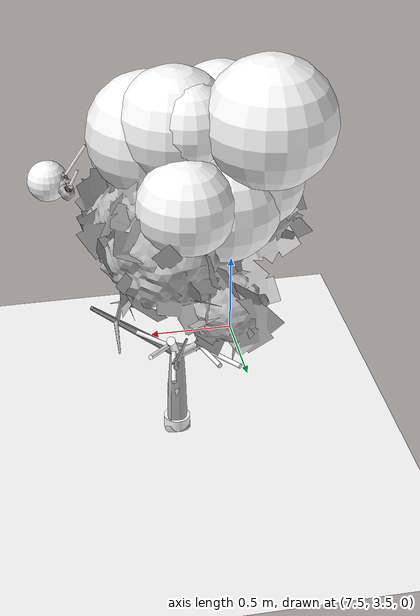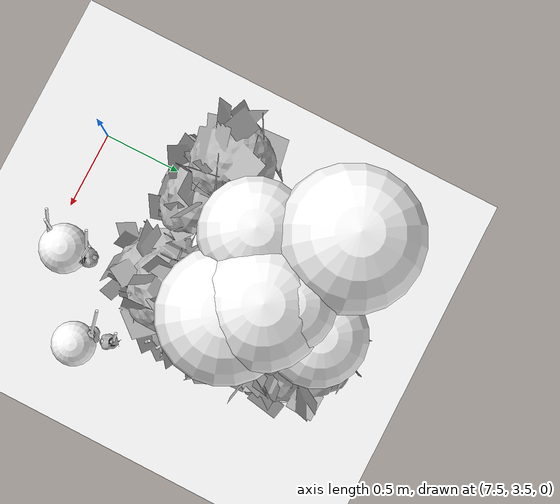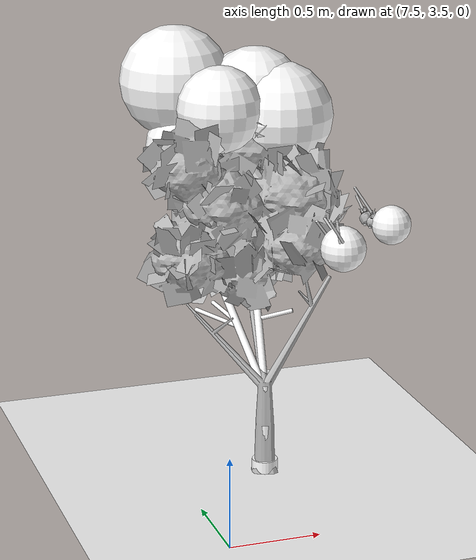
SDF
<sdf version="1.11">
 <world name="peach_orchard">
  <model name="ground">
   <static>true</static>
   <link name="link">
    <visual name="soil">
     <geometry><plane><normal>0 0 1</normal><size>32 22</size></plane></geometry>
     <material>
      <ambient>1 1 1 1</ambient>
      <diffuse>1 1 1 1</diffuse>
      <specular>0.1 0.1 0.1 1</specular>
      <pbr>
       <metal>
        <albedo_map>textures/soil_albedo.png</albedo_map>
        <normal_map type="tangent">textures/soil_normal.png</normal_map>
        <roughness>0.95</roughness>
        <metalness>0</metalness>
       </metal>
      </pbr>
     </material>
    </visual>
    <collision name="c_soil">
     <geometry><plane><normal>0 0 1</normal><size>32 22</size></plane></geometry>
    </collision>
   </link>
  </model>
  <model name="tree_r4_t5">
   <pose>8 4.4 0 0 0 0</pose>
   <static>true</static>
   <link name="link">
    <visual name="tree_mesh">
     <pose>0 0 0 0 0 -0.181474</pose>
     <geometry>
      <mesh><uri>model://peach_sim/meshes/peach_tree_b.glb</uri><scale>0.92982 0.92982 0.92982</scale></mesh>
     </geometry>
    </visual>
    <visual name="trunk_0">
     <pose>0 0 0.142037 0 0 0</pose>
     <geometry><cylinder><radius>0.0502214</radius><length>0.284074</length></cylinder></geometry>
     <material>
      <ambient>1 1 1 1</ambient>
      <diffuse>1 1 1 1</diffuse>
      <specular>0.1 0.1 0.1 1</specular>
      <pbr>
       <metal>
        <albedo_map>textures/bark_albedo.png</albedo_map>
        <normal_map type="tangent">textures/bark_normal.png</normal_map>
        <roughness>0.9</roughness>
        <metalness>0</metalness>
       </metal>
      </pbr>
     </material>
    </visual>
    <collision name="c_trunk_0">
     <pose>0 0 0.142037 0 0 0</pose>
     <geometry><cylinder><radius>0.0502214</radius><length>0.284074</length></cylinder></geometry>
    </collision>
    <visual name="trunk_1">
     <pose>0 0 0.400287 0 0 0</pose>
     <geometry><cylinder><radius>0.0361594</radius><length>0.232425</length></cylinder></geometry>
     <material>
      <ambient>1 1 1 1</ambient>
      <diffuse>1 1 1 1</diffuse>
      <specular>0.1 0.1 0.1 1</specular>
      <pbr>
       <metal>
        <albedo_map>textures/bark_albedo.png</albedo_map>
        <normal_map type="tangent">textures/bark_normal.png</normal_map>
        <roughness>0.9</roughness>
        <metalness>0</metalness>
       </metal>
      </pbr>
     </material>
    </visual>
    <collision name="c_trunk_1">
     <pose>0 0 0.400287 0 0 0</pose>
     <geometry><cylinder><radius>0.0361594</radius><length>0.232425</length></cylinder></geometry>
    </collision>
    <visual name="root_flare">
     <pose>0 0 0.035 0 0 0</pose>
     <geometry><cylinder><radius>0.0728211</radius><length>0.07</length></cylinder></geometry>
     <material>
      <ambient>1 1 1 1</ambient>
      <diffuse>1 1 1 1</diffuse>
      <specular>0.1 0.1 0.1 1</specular>
      <pbr>
       <metal>
        <albedo_map>textures/bark_albedo.png</albedo_map>
        <normal_map type="tangent">textures/bark_normal.png</normal_map>
        <roughness>0.95</roughness>
        <metalness>0</metalness>
       </metal>
      </pbr>
     </material>
    </visual>
    <visual name="scaffold_0">
     <pose>-0.0452417 0.277293 0.722905 0 0.848176 1.73253</pose>
     <geometry><cylinder><radius>0.022</radius><length>0.749149</length></cylinder></geometry>
     <material>
      <ambient>1 1 1 1</ambient>
      <diffuse>1 1 1 1</diffuse>
      <specular>0.1 0.1 0.1 1</specular>
      <pbr>
       <metal>
        <albedo_map>textures/bark_albedo.png</albedo_map>
        <normal_map type="tangent">textures/bark_normal.png</normal_map>
        <roughness>0.9</roughness>
        <metalness>0</metalness>
       </metal>
      </pbr>
     </material>
    </visual>
    <collision name="c_scaffold_0">
     <pose>-0.0452417 0.277293 0.722905 0 0.848176 1.73253</pose>
     <geometry><cylinder><radius>0.022</radius><length>0.749149</length></cylinder></geometry>
    </collision>
    <visual name="branchlet_0_0">
     <pose>-0.136789 0.451887 0.776657 0 1.46414 2.13726</pose>
     <geometry><cylinder><radius>0.012</radius><length>0.31792</length></cylinder></geometry>
     <material>
      <ambient>1 1 1 1</ambient>
      <diffuse>1 1 1 1</diffuse>
      <specular>0.1 0.1 0.1 1</specular>
      <pbr>
       <metal>
        <albedo_map>textures/bark_albedo.png</albedo_map>
        <normal_map type="tangent">textures/bark_normal.png</normal_map>
        <roughness>0.9</roughness>
        <metalness>0</metalness>
       </metal>
      </pbr>
     </material>
    </visual>
    <visual name="branchlet_0_1">
     <pose>-0.0847817 0.471213 0.801259 0 1.42523 1.79214</pose>
     <geometry><cylinder><radius>0.012</radius><length>0.26457</length></cylinder></geometry>
     <material>
      <ambient>1 1 1 1</ambient>
      <diffuse>1 1 1 1</diffuse>
      <specular>0.1 0.1 0.1 1</specular>
      <pbr>
       <metal>
        <albedo_map>textures/bark_albedo.png</albedo_map>
        <normal_map type="tangent">textures/bark_normal.png</normal_map>
        <roughness>0.9</roughness>
        <metalness>0</metalness>
       </metal>
      </pbr>
     </material>
    </visual>
    <visual name="scaffold_1">
     <pose>0.067379 0.29921 0.738626 0 0.861121 1.3493</pose>
     <geometry><cylinder><radius>0.022</radius><length>0.80863</length></cylinder></geometry>
     <material>
      <ambient>1 1 1 1</ambient>
      <diffuse>1 1 1 1</diffuse>
      <specular>0.1 0.1 0.1 1</specular>
      <pbr>
       <metal>
        <albedo_map>textures/bark_albedo.png</albedo_map>
        <normal_map type="tangent">textures/bark_normal.png</normal_map>
        <roughness>0.9</roughness>
        <metalness>0</metalness>
       </metal>
      </pbr>
     </material>
    </visual>
    <collision name="c_scaffold_1">
     <pose>0.067379 0.29921 0.738626 0 0.861121 1.3493</pose>
     <geometry><cylinder><radius>0.022</radius><length>0.80863</length></cylinder></geometry>
    </collision>
    <visual name="branchlet_1_0">
     <pose>0.09377 0.446251 0.744852 0 1.76212 1.40585</pose>
     <geometry><cylinder><radius>0.012</radius><length>0.236355</length></cylinder></geometry>
     <material>
      <ambient>1 1 1 1</ambient>
      <diffuse>1 1 1 1</diffuse>
      <specular>0.1 0.1 0.1 1</specular>
      <pbr>
       <metal>
        <albedo_map>textures/bark_albedo.png</albedo_map>
        <normal_map type="tangent">textures/bark_normal.png</normal_map>
        <roughness>0.9</roughness>
        <metalness>0</metalness>
       </metal>
      </pbr>
     </material>
    </visual>
    <visual name="branchlet_1_1">
     <pose>0.181813 0.594841 0.950516 0 1.32833 0.905343</pose>
     <geometry><cylinder><radius>0.012</radius><length>0.223965</length></cylinder></geometry>
     <material>
      <ambient>1 1 1 1</ambient>
      <diffuse>1 1 1 1</diffuse>
      <specular>0.1 0.1 0.1 1</specular>
      <pbr>
       <metal>
        <albedo_map>textures/bark_albedo.png</albedo_map>
        <normal_map type="tangent">textures/bark_normal.png</normal_map>
        <roughness>0.9</roughness>
        <metalness>0</metalness>
       </metal>
      </pbr>
     </material>
    </visual>
    <visual name="branchlet_1_2">
     <pose>0.167006 0.304097 0.81164 0 1.27626 -0.46038</pose>
     <geometry><cylinder><radius>0.012</radius><length>0.206763</length></cylinder></geometry>
     <material>
      <ambient>1 1 1 1</ambient>
      <diffuse>1 1 1 1</diffuse>
      <specular>0.1 0.1 0.1 1</specular>
      <pbr>
       <metal>
        <albedo_map>textures/bark_albedo.png</albedo_map>
        <normal_map type="tangent">textures/bark_normal.png</normal_map>
        <roughness>0.9</roughness>
        <metalness>0</metalness>
       </metal>
      </pbr>
     </material>
    </visual>
    <visual name="canopy_0">
     <pose>-0.325704 0.60466 2.14879 0 0 0</pose>
     <geometry><sphere><radius>0.313053</radius></sphere></geometry>
     <material>
      <ambient>1 1 1 1</ambient>
      <diffuse>1 1 1 1</diffuse>
      <specular>0.1 0.1 0.1 1</specular>
      <pbr>
       <metal>
        <albedo_map>textures/leaf_albedo.png</albedo_map>
        <normal_map type="tangent">textures/leaf_normal.png</normal_map>
        <roughness>0.85</roughness>
        <metalness>0</metalness>
       </metal>
      </pbr>
     </material>
    </visual>
    <collision name="c_canopy_0">
     <pose>-0.325704 0.60466 2.14879 0 0 0</pose>
     <geometry><sphere><radius>0.313053</radius></sphere></geometry>
    </collision>
    <visual name="canopy_1">
     <pose>0.0800708 0.407239 2.07639 0 0 0</pose>
     <geometry><sphere><radius>0.279245</radius></sphere></geometry>
     <material>
      <ambient>1 1 1 1</ambient>
      <diffuse>1 1 1 1</diffuse>
      <specular>0.1 0.1 0.1 1</specular>
      <pbr>
       <metal>
        <albedo_map>textures/leaf_albedo.png</albedo_map>
        <normal_map type="tangent">textures/leaf_normal.png</normal_map>
        <roughness>0.85</roughness>
        <metalness>0</metalness>
       </metal>
      </pbr>
     </material>
    </visual>
    <collision name="c_canopy_1">
     <pose>0.0800708 0.407239 2.07639 0 0 0</pose>
     <geometry><sphere><radius>0.279245</radius></sphere></geometry>
    </collision>
    <visual name="canopy_2">
     <pose>-0.296091 0.496373 1.79865 0 0 0</pose>
     <geometry><sphere><radius>0.228046</radius></sphere></geometry>
     <material>
      <ambient>1 1 1 1</ambient>
      <diffuse>1 1 1 1</diffuse>
      <specular>0.1 0.1 0.1 1</specular>
      <pbr>
       <metal>
        <albedo_map>textures/leaf_albedo.png</albedo_map>
        <normal_map type="tangent">textures/leaf_normal.png</normal_map>
        <roughness>0.85</roughness>
        <metalness>0</metalness>
       </metal>
      </pbr>
     </material>
    </visual>
    <collision name="c_canopy_2">
     <pose>-0.296091 0.496373 1.79865 0 0 0</pose>
     <geometry><sphere><radius>0.228046</radius></sphere></geometry>
    </collision>
    <visual name="canopy_3">
     <pose>-0.12035 0.141769 1.60286 0 0 0</pose>
     <geometry><sphere><radius>0.186725</radius></sphere></geometry>
     <material>
      <ambient>1 1 1 1</ambient>
      <diffuse>1 1 1 1</diffuse>
      <specular>0.1 0.1 0.1 1</specular>
      <pbr>
       <metal>
        <albedo_map>textures/leaf_albedo.png</albedo_map>
        <normal_map type="tangent">textures/leaf_normal.png</normal_map>
        <roughness>0.85</roughness>
        <metalness>0</metalness>
       </metal>
      </pbr>
     </material>
    </visual>
    <visual name="canopy_4">
     <pose>0.181496 0.292294 1.98621 0 0 0</pose>
     <geometry><sphere><radius>0.300787</radius></sphere></geometry>
     <material>
      <ambient>1 1 1 1</ambient>
      <diffuse>1 1 1 1</diffuse>
      <specular>0.1 0.1 0.1 1</specular>
      <pbr>
       <metal>
        <albedo_map>textures/leaf_albedo.png</albedo_map>
        <normal_map type="tangent">textures/leaf_normal.png</normal_map>
        <roughness>0.85</roughness>
        <metalness>0</metalness>
       </metal>
      </pbr>
     </material>
    </visual>
    <visual name="canopy_5">
     <pose>0.0271667 0.497288 2.11406 0 0 0</pose>
     <geometry><sphere><radius>0.206825</radius></sphere></geometry>
     <material>
      <ambient>1 1 1 1</ambient>
      <diffuse>1 1 1 1</diffuse>
      <specular>0.1 0.1 0.1 1</specular>
      <pbr>
       <metal>
        <albedo_map>textures/leaf_albedo.png</albedo_map>
        <normal_map type="tangent">textures/leaf_normal.png</normal_map>
        <roughness>0.85</roughness>
        <metalness>0</metalness>
       </metal>
      </pbr>
     </material>
    </visual>
    <visual name="canopy_6">
     <pose>-0.123741 0.532642 1.72468 0 0 0</pose>
     <geometry><sphere><radius>0.291736</radius></sphere></geometry>
     <material>
      <ambient>1 1 1 1</ambient>
      <diffuse>1 1 1 1</diffuse>
      <specular>0.1 0.1 0.1 1</specular>
      <pbr>
       <metal>
        <albedo_map>textures/leaf_albedo.png</albedo_map>
        <normal_map type="tangent">textures/leaf_normal.png</normal_map>
        <roughness>0.85</roughness>
        <metalness>0</metalness>
       </metal>
      </pbr>
     </material>
    </visual>
    <visual name="canopy_7">
     <pose>-0.102249 0.47552 1.93827 0 0 0</pose>
     <geometry><sphere><radius>0.19498</radius></sphere></geometry>
     <material>
      <ambient>1 1 1 1</ambient>
      <diffuse>1 1 1 1</diffuse>
      <specular>0.1 0.1 0.1 1</specular>
      <pbr>
       <metal>
        <albedo_map>textures/leaf_albedo.png</albedo_map>
        <normal_map type="tangent">textures/leaf_normal.png</normal_map>
        <roughness>0.85</roughness>
        <metalness>0</metalness>
       </metal>
      </pbr>
     </material>
    </visual>
    <visual name="canopy_8">
     <pose>-0.175787 0.244964 2.05383 0 0 0</pose>
     <geometry><sphere><radius>0.24159</radius></sphere></geometry>
     <material>
      <ambient>1 1 1 1</ambient>
      <diffuse>1 1 1 1</diffuse>
      <specular>0.1 0.1 0.1 1</specular>
      <pbr>
       <metal>
        <albedo_map>textures/leaf_albedo.png</albedo_map>
        <normal_map type="tangent">textures/leaf_normal.png</normal_map>
        <roughness>0.85</roughness>
        <metalness>0</metalness>
       </metal>
      </pbr>
     </material>
    </visual>
    <visual name="canopy_9">
     <pose>0.0758989 0.689886 1.79514 0 0 0</pose>
     <geometry><sphere><radius>0.234723</radius></sphere></geometry>
     <material>
      <ambient>1 1 1 1</ambient>
      <diffuse>1 1 1 1</diffuse>
      <specular>0.1 0.1 0.1 1</specular>
      <pbr>
       <metal>
        <albedo_map>textures/leaf_albedo.png</albedo_map>
        <normal_map type="tangent">textures/leaf_normal.png</normal_map>
        <roughness>0.85</roughness>
        <metalness>0</metalness>
       </metal>
      </pbr>
     </material>
    </visual>
    <visual name="foliage_0">
     <pose>0.226436 -0.124006 1.46519 0 0 0</pose>
     <geometry><sphere><radius>0.0868982</radius></sphere></geometry>
     <material>
      <ambient>1 1 1 1</ambient>
      <diffuse>1 1 1 1</diffuse>
      <specular>0.1 0.1 0.1 1</specular>
      <pbr>
       <metal>
        <albedo_map>textures/leaf_albedo.png</albedo_map>
        <normal_map type="tangent">textures/leaf_normal.png</normal_map>
        <roughness>0.85</roughness>
        <metalness>0</metalness>
       </metal>
      </pbr>
     </material>
    </visual>
    <visual name="foliage_4">
     <pose>0.248391 -0.54091 1.44902 0 0 0</pose>
     <geometry><sphere><radius>0.121902</radius></sphere></geometry>
     <material>
      <ambient>1 1 1 1</ambient>
      <diffuse>1 1 1 1</diffuse>
      <specular>0.1 0.1 0.1 1</specular>
      <pbr>
       <metal>
        <albedo_map>textures/leaf_albedo.png</albedo_map>
        <normal_map type="tangent">textures/leaf_normal.png</normal_map>
        <roughness>0.85</roughness>
        <metalness>0</metalness>
       </metal>
      </pbr>
     </material>
    </visual>
    <visual name="foliage_8">
     <pose>0.626075 -0.28515 1.47128 0 0 0</pose>
     <geometry><sphere><radius>0.107554</radius></sphere></geometry>
     <material>
      <ambient>1 1 1 1</ambient>
      <diffuse>1 1 1 1</diffuse>
      <specular>0.1 0.1 0.1 1</specular>
      <pbr>
       <metal>
        <albedo_map>textures/leaf_albedo.png</albedo_map>
        <normal_map type="tangent">textures/leaf_normal.png</normal_map>
        <roughness>0.85</roughness>
        <metalness>0</metalness>
       </metal>
      </pbr>
     </material>
    </visual>
    <visual name="twig_0">
     <pose>0.230143 -0.203011 1.48737 0 0.573188 2.53537</pose>
     <geometry><cylinder><radius>0.007</radius><length>0.119744</length></cylinder></geometry>
     <material>
      <ambient>1 1 1 1</ambient>
      <diffuse>1 1 1 1</diffuse>
      <specular>0.1 0.1 0.1 1</specular>
      <pbr>
       <metal>
        <albedo_map>textures/bark_albedo.png</albedo_map>
        <normal_map type="tangent">textures/bark_normal.png</normal_map>
        <roughness>0.9</roughness>
        <metalness>0</metalness>
       </metal>
      </pbr>
     </material>
    </visual>
    <visual name="twig_1">
     <pose>0.220043 -0.426806 1.53669 0 0.591294 2.81604</pose>
     <geometry><cylinder><radius>0.007</radius><length>0.132408</length></cylinder></geometry>
     <material>
      <ambient>1 1 1 1</ambient>
      <diffuse>1 1 1 1</diffuse>
      <specular>0.1 0.1 0.1 1</specular>
      <pbr>
       <metal>
        <albedo_map>textures/bark_albedo.png</albedo_map>
        <normal_map type="tangent">textures/bark_normal.png</normal_map>
        <roughness>0.9</roughness>
        <metalness>0</metalness>
       </metal>
      </pbr>
     </material>
    </visual>
    <visual name="twig_2">
     <pose>0.175493 -0.446835 1.52356 0 0.667434 -2.84541</pose>
     <geometry><cylinder><radius>0.007</radius><length>0.170305</length></cylinder></geometry>
     <material>
      <ambient>1 1 1 1</ambient>
      <diffuse>1 1 1 1</diffuse>
      <specular>0.1 0.1 0.1 1</specular>
      <pbr>
       <metal>
        <albedo_map>textures/bark_albedo.png</albedo_map>
        <normal_map type="tangent">textures/bark_normal.png</normal_map>
        <roughness>0.9</roughness>
        <metalness>0</metalness>
       </metal>
      </pbr>
     </material>
    </visual>
    <visual name="twig_3">
     <pose>0.186051 -0.631689 1.56003 0 0.262197 -2.49147</pose>
     <geometry><cylinder><radius>0.007</radius><length>0.161669</length></cylinder></geometry>
     <material>
      <ambient>1 1 1 1</ambient>
      <diffuse>1 1 1 1</diffuse>
      <specular>0.1 0.1 0.1 1</specular>
      <pbr>
       <metal>
        <albedo_map>textures/bark_albedo.png</albedo_map>
        <normal_map type="tangent">textures/bark_normal.png</normal_map>
        <roughness>0.9</roughness>
        <metalness>0</metalness>
       </metal>
      </pbr>
     </material>
    </visual>
    <visual name="twig_4">
     <pose>0.168702 -0.644706 1.57856 0 0.607709 -2.81674</pose>
     <geometry><cylinder><radius>0.007</radius><length>0.169536</length></cylinder></geometry>
     <material>
      <ambient>1 1 1 1</ambient>
      <diffuse>1 1 1 1</diffuse>
      <specular>0.1 0.1 0.1 1</specular>
      <pbr>
       <metal>
        <albedo_map>textures/bark_albedo.png</albedo_map>
        <normal_map type="tangent">textures/bark_normal.png</normal_map>
        <roughness>0.9</roughness>
        <metalness>0</metalness>
       </metal>
      </pbr>
     </material>
    </visual>
    <visual name="twig_5">
     <pose>0.434271 0.0983742 1.50817 0 0.523538 2.49245</pose>
     <geometry><cylinder><radius>0.007</radius><length>0.159754</length></cylinder></geometry>
     <material>
      <ambient>1 1 1 1</ambient>
      <diffuse>1 1 1 1</diffuse>
      <specular>0.1 0.1 0.1 1</specular>
      <pbr>
       <metal>
        <albedo_map>textures/bark_albedo.png</albedo_map>
        <normal_map type="tangent">textures/bark_normal.png</normal_map>
        <roughness>0.9</roughness>
        <metalness>0</metalness>
       </metal>
      </pbr>
     </material>
    </visual>
    <visual name="twig_6">
     <pose>0.453312 0.025548 1.53693 0 0.219137 2.34181</pose>
     <geometry><cylinder><radius>0.007</radius><length>0.123831</length></cylinder></geometry>
     <material>
      <ambient>1 1 1 1</ambient>
      <diffuse>1 1 1 1</diffuse>
      <specular>0.1 0.1 0.1 1</specular>
      <pbr>
       <metal>
        <albedo_map>textures/bark_albedo.png</albedo_map>
        <normal_map type="tangent">textures/bark_normal.png</normal_map>
        <roughness>0.9</roughness>
        <metalness>0</metalness>
       </metal>
      </pbr>
     </material>
    </visual>
    <visual name="twig_7">
     <pose>0.507377 -0.117424 1.55859 0 0.444766 3.11031</pose>
     <geometry><cylinder><radius>0.007</radius><length>0.108686</length></cylinder></geometry>
     <material>
      <ambient>1 1 1 1</ambient>
      <diffuse>1 1 1 1</diffuse>
      <specular>0.1 0.1 0.1 1</specular>
      <pbr>
       <metal>
        <albedo_map>textures/bark_albedo.png</albedo_map>
        <normal_map type="tangent">textures/bark_normal.png</normal_map>
        <roughness>0.9</roughness>
        <metalness>0</metalness>
       </metal>
      </pbr>
     </material>
    </visual>
    <visual name="twig_8">
     <pose>0.487483 -0.229301 1.59914 0 0.596435 -3.09033</pose>
     <geometry><cylinder><radius>0.007</radius><length>0.210528</length></cylinder></geometry>
     <material>
      <ambient>1 1 1 1</ambient>
      <diffuse>1 1 1 1</diffuse>
      <specular>0.1 0.1 0.1 1</specular>
      <pbr>
       <metal>
        <albedo_map>textures/bark_albedo.png</albedo_map>
        <normal_map type="tangent">textures/bark_normal.png</normal_map>
        <roughness>0.9</roughness>
        <metalness>0</metalness>
       </metal>
      </pbr>
     </material>
    </visual>
   </link>
  </model>
  <model name="peach_tree_r4_t5_00">
   <pose>8.22 4.20623 1.38048 0 0.683671 -0.645657</pose>
   <static>true</static>
   <link name="bag">
    <visual name="bag_mesh">
     <pose>0 0 0.0454987 0 0 -0</pose>
     <geometry>
      <mesh><uri>model://peach_sim/meshes/bagged_peach.glb</uri><scale>1.05046 1.20464 1.03406</scale></mesh>
     </geometry>
    </visual>
    <visual name="body">
     <pose>0 0 0.0274987 0 0 0</pose>
     <geometry><ellipsoid><radii>0.0393922 0.0313207 0.0296985</radii></ellipsoid></geometry>
     <material>
      <ambient>1 1 1 1</ambient>
      <diffuse>1 1 1 1</diffuse>
      <specular>0.1 0.1 0.1 1</specular>
      <pbr>
       <metal>
        <albedo_map>textures/paper_bag_albedo.png</albedo_map>
        <normal_map type="tangent">textures/paper_bag_normal.png</normal_map>
        <roughness>0.72</roughness>
        <metalness>0</metalness>
       </metal>
      </pbr>
     </material>
    </visual>
    <visual name="bottom_fold">
     <pose>0 0 0.012 0 0 0.35</pose>
     <geometry><box><size>0.061058 0.0360188 0.022</size></box></geometry>
     <material>
      <ambient>1 1 1 1</ambient>
      <diffuse>1 1 1 1</diffuse>
      <specular>0.1 0.1 0.1 1</specular>
      <pbr>
       <metal>
        <albedo_map>textures/paper_bag_albedo.png</albedo_map>
        <normal_map type="tangent">textures/paper_bag_normal.png</normal_map>
        <roughness>0.8</roughness>
        <metalness>0</metalness>
       </metal>
      </pbr>
     </material>
    </visual>
    <visual name="fruit">
     <pose>0 0 0.0214268 0 0 0</pose>
     <geometry><sphere><radius>0.0285239</radius></sphere></geometry>
     <material>
      <ambient>1 1 1 1</ambient>
      <diffuse>1 1 1 1</diffuse>
      <specular>0.1 0.1 0.1 1</specular>
      <pbr>
       <metal>
        <albedo_map>textures/fruit_skin_albedo.png</albedo_map>
        <normal_map type="tangent">textures/fruit_skin_normal.png</normal_map>
        <roughness>0.55</roughness>
        <metalness>0</metalness>
       </metal>
      </pbr>
     </material>
    </visual>
    <visual name="neck">
     <pose>0 0 0.0639973 0 0 0</pose>
     <geometry><cylinder><radius>0.013</radius><length>0.018</length></cylinder></geometry>
     <material>
      <ambient>1 1 1 1</ambient>
      <diffuse>1 1 1 1</diffuse>
      <specular>0.1 0.1 0.1 1</specular>
      <pbr>
       <metal>
        <albedo_map>textures/paper_bag_albedo.png</albedo_map>
        <normal_map type="tangent">textures/paper_bag_normal.png</normal_map>
        <roughness>0.75</roughness>
        <metalness>0</metalness>
       </metal>
      </pbr>
     </material>
    </visual>
    <visual name="gather">
     <pose>0 0 0.0449973 0 0 0</pose>
     <geometry><cylinder><radius>0.019</radius><length>0.02</length></cylinder></geometry>
     <material>
      <ambient>1 1 1 1</ambient>
      <diffuse>1 1 1 1</diffuse>
      <specular>0.1 0.1 0.1 1</specular>
      <pbr>
       <metal>
        <albedo_map>textures/paper_bag_albedo.png</albedo_map>
        <normal_map type="tangent">textures/paper_bag_normal.png</normal_map>
        <roughness>0.8</roughness>
        <metalness>0</metalness>
       </metal>
      </pbr>
     </material>
    </visual>
    <visual name="inner_paper">
     <pose>0 0 0.0689973 0 0 0</pose>
     <geometry><cylinder><radius>0.01</radius><length>0.008</length></cylinder></geometry>
     <material>
      <ambient>0.180392 0.14902 0.133333 1</ambient>
      <diffuse>0.180392 0.14902 0.133333 1</diffuse>
      <specular>0.1 0.1 0.1 1</specular>
     </material>
    </visual>
    <visual name="wire_0">
     <pose>0 0 0.0589973 0 0 0</pose>
     <geometry><cylinder><radius>0.0205</radius><length>0.0035</length></cylinder></geometry>
     <material>
      <ambient>0.25 0.25 0.25 1</ambient>
      <diffuse>0.25 0.25 0.25 1</diffuse>
      <specular>0.1 0.1 0.1 1</specular>
     </material>
    </visual>
    <visual name="wire_1">
     <pose>0 0 0.0659973 0 0 0</pose>
     <geometry><cylinder><radius>0.0205</radius><length>0.0035</length></cylinder></geometry>
     <material>
      <ambient>0.25 0.25 0.25 1</ambient>
      <diffuse>0.25 0.25 0.25 1</diffuse>
      <specular>0.1 0.1 0.1 1</specular>
     </material>
    </visual>
    <visual name="wire_tail">
     <pose>0.01 0 0.0669973 0 0.521618 0</pose>
     <geometry><cylinder><radius>0.0012</radius><length>0.026</length></cylinder></geometry>
     <material>
      <ambient>0.25 0.25 0.25 1</ambient>
      <diffuse>0.25 0.25 0.25 1</diffuse>
      <specular>0.1 0.1 0.1 1</specular>
     </material>
    </visual>
    <collision name="c_body">
     <pose>0 0 0.0274987 0 0 0</pose>
     <geometry><cylinder><radius>0.0393922</radius><length>0.0549973</length></cylinder></geometry>
    </collision>
   </link>
  </model>
  <model name="peach_tree_r4_t5_01">
   <pose>8.22 4.00704 1.42588 0 0.8002 -0.916508</pose>
   <static>true</static>
   <link name="bag">
    <visual name="bag_mesh">
     <pose>0 0 0.0490871 0 0 -0</pose>
     <geometry>
      <mesh><uri>model://peach_sim/meshes/bagged_peach.glb</uri><scale>1.07408 1.29452 1.11562</scale></mesh>
     </geometry>
    </visual>
    <visual name="body">
     <pose>0 0 0.0310871 0 0 0</pose>
     <geometry><ellipsoid><radii>0.0402779 0.0336576 0.0335741</radii></ellipsoid></geometry>
     <material>
      <ambient>1 1 1 1</ambient>
      <diffuse>1 1 1 1</diffuse>
      <specular>0.1 0.1 0.1 1</specular>
      <pbr>
       <metal>
        <albedo_map>textures/paper_bag_albedo.png</albedo_map>
        <normal_map type="tangent">textures/paper_bag_normal.png</normal_map>
        <roughness>0.72</roughness>
        <metalness>0</metalness>
       </metal>
      </pbr>
     </material>
    </visual>
    <visual name="bottom_fold">
     <pose>0 0 0.012 0 0 0.35</pose>
     <geometry><box><size>0.0624307 0.0387062 0.022</size></box></geometry>
     <material>
      <ambient>1 1 1 1</ambient>
      <diffuse>1 1 1 1</diffuse>
      <specular>0.1 0.1 0.1 1</specular>
      <pbr>
       <metal>
        <albedo_map>textures/paper_bag_albedo.png</albedo_map>
        <normal_map type="tangent">textures/paper_bag_normal.png</normal_map>
        <roughness>0.8</roughness>
        <metalness>0</metalness>
       </metal>
      </pbr>
     </material>
    </visual>
    <visual name="fruit">
     <pose>0 0 0.0216123 0 0 0</pose>
     <geometry><sphere><radius>0.0287167</radius></sphere></geometry>
     <material>
      <ambient>1 1 1 1</ambient>
      <diffuse>1 1 1 1</diffuse>
      <specular>0.1 0.1 0.1 1</specular>
      <pbr>
       <metal>
        <albedo_map>textures/fruit_skin_albedo.png</albedo_map>
        <normal_map type="tangent">textures/fruit_skin_normal.png</normal_map>
        <roughness>0.55</roughness>
        <metalness>0</metalness>
       </metal>
      </pbr>
     </material>
    </visual>
    <visual name="neck">
     <pose>0 0 0.0711742 0 0 0</pose>
     <geometry><cylinder><radius>0.013</radius><length>0.018</length></cylinder></geometry>
     <material>
      <ambient>1 1 1 1</ambient>
      <diffuse>1 1 1 1</diffuse>
      <specular>0.1 0.1 0.1 1</specular>
      <pbr>
       <metal>
        <albedo_map>textures/paper_bag_albedo.png</albedo_map>
        <normal_map type="tangent">textures/paper_bag_normal.png</normal_map>
        <roughness>0.75</roughness>
        <metalness>0</metalness>
       </metal>
      </pbr>
     </material>
    </visual>
    <visual name="gather">
     <pose>0 0 0.0521742 0 0 0</pose>
     <geometry><cylinder><radius>0.019</radius><length>0.02</length></cylinder></geometry>
     <material>
      <ambient>1 1 1 1</ambient>
      <diffuse>1 1 1 1</diffuse>
      <specular>0.1 0.1 0.1 1</specular>
      <pbr>
       <metal>
        <albedo_map>textures/paper_bag_albedo.png</albedo_map>
        <normal_map type="tangent">textures/paper_bag_normal.png</normal_map>
        <roughness>0.8</roughness>
        <metalness>0</metalness>
       </metal>
      </pbr>
     </material>
    </visual>
    <visual name="inner_paper">
     <pose>0 0 0.0761742 0 0 0</pose>
     <geometry><cylinder><radius>0.01</radius><length>0.008</length></cylinder></geometry>
     <material>
      <ambient>0.180392 0.14902 0.133333 1</ambient>
      <diffuse>0.180392 0.14902 0.133333 1</diffuse>
      <specular>0.1 0.1 0.1 1</specular>
     </material>
    </visual>
    <visual name="wire_0">
     <pose>0 0 0.0661742 0 0 0</pose>
     <geometry><cylinder><radius>0.0205</radius><length>0.0035</length></cylinder></geometry>
     <material>
      <ambient>0.25 0.25 0.25 1</ambient>
      <diffuse>0.25 0.25 0.25 1</diffuse>
      <specular>0.1 0.1 0.1 1</specular>
     </material>
    </visual>
    <visual name="wire_1">
     <pose>0 0 0.0731742 0 0 0</pose>
     <geometry><cylinder><radius>0.0205</radius><length>0.0035</length></cylinder></geometry>
     <material>
      <ambient>0.25 0.25 0.25 1</ambient>
      <diffuse>0.25 0.25 0.25 1</diffuse>
      <specular>0.1 0.1 0.1 1</specular>
     </material>
    </visual>
    <visual name="wire_tail">
     <pose>0.01 0 0.0741742 0 0.521618 0</pose>
     <geometry><cylinder><radius>0.0012</radius><length>0.026</length></cylinder></geometry>
     <material>
      <ambient>0.25 0.25 0.25 1</ambient>
      <diffuse>0.25 0.25 0.25 1</diffuse>
      <specular>0.1 0.1 0.1 1</specular>
     </material>
    </visual>
    <collision name="c_body">
     <pose>0 0 0.0310871 0 0 0</pose>
     <geometry><cylinder><radius>0.0402779</radius><length>0.0621742</length></cylinder></geometry>
    </collision>
   </link>
  </model>
  <model name="peach_tree_r4_t5_02">
   <pose>8.22 3.95157 1.3973 0 0.294023 1.2362</pose>
   <static>true</static>
   <link name="bag">
    <visual name="bag_mesh">
     <pose>0 0 0.0400216 0 0 0</pose>
     <geometry>
      <mesh><uri>model://peach_sim/meshes/bagged_peach.glb</uri><scale>1.07073 1.20878 0.909581</scale></mesh>
     </geometry>
    </visual>
    <visual name="body">
     <pose>0 0 0.0220216 0 0 0</pose>
     <geometry><ellipsoid><radii>0.0401525 0.0314284 0.0237833</radii></ellipsoid></geometry>
     <material>
      <ambient>1 1 1 1</ambient>
      <diffuse>1 1 1 1</diffuse>
      <specular>0.1 0.1 0.1 1</specular>
      <pbr>
       <metal>
        <albedo_map>textures/paper_bag_albedo.png</albedo_map>
        <normal_map type="tangent">textures/paper_bag_normal.png</normal_map>
        <roughness>0.72</roughness>
        <metalness>0</metalness>
       </metal>
      </pbr>
     </material>
    </visual>
    <visual name="bottom_fold">
     <pose>0 0 0.012 0 0 0.35</pose>
     <geometry><box><size>0.0622364 0.0361426 0.022</size></box></geometry>
     <material>
      <ambient>1 1 1 1</ambient>
      <diffuse>1 1 1 1</diffuse>
      <specular>0.1 0.1 0.1 1</specular>
      <pbr>
       <metal>
        <albedo_map>textures/paper_bag_albedo.png</albedo_map>
        <normal_map type="tangent">textures/paper_bag_normal.png</normal_map>
        <roughness>0.8</roughness>
        <metalness>0</metalness>
       </metal>
      </pbr>
     </material>
    </visual>
    <visual name="fruit">
     <pose>0 0 0.018417 0 0 0</pose>
     <geometry><sphere><radius>0.0253937</radius></sphere></geometry>
     <material>
      <ambient>1 1 1 1</ambient>
      <diffuse>1 1 1 1</diffuse>
      <specular>0.1 0.1 0.1 1</specular>
      <pbr>
       <metal>
        <albedo_map>textures/fruit_skin_albedo.png</albedo_map>
        <normal_map type="tangent">textures/fruit_skin_normal.png</normal_map>
        <roughness>0.55</roughness>
        <metalness>0</metalness>
       </metal>
      </pbr>
     </material>
    </visual>
    <visual name="neck">
     <pose>0 0 0.0530432 0 0 0</pose>
     <geometry><cylinder><radius>0.013</radius><length>0.018</length></cylinder></geometry>
     <material>
      <ambient>1 1 1 1</ambient>
      <diffuse>1 1 1 1</diffuse>
      <specular>0.1 0.1 0.1 1</specular>
      <pbr>
       <metal>
        <albedo_map>textures/paper_bag_albedo.png</albedo_map>
        <normal_map type="tangent">textures/paper_bag_normal.png</normal_map>
        <roughness>0.75</roughness>
        <metalness>0</metalness>
       </metal>
      </pbr>
     </material>
    </visual>
    <visual name="gather">
     <pose>0 0 0.0340432 0 0 0</pose>
     <geometry><cylinder><radius>0.019</radius><length>0.02</length></cylinder></geometry>
     <material>
      <ambient>1 1 1 1</ambient>
      <diffuse>1 1 1 1</diffuse>
      <specular>0.1 0.1 0.1 1</specular>
      <pbr>
       <metal>
        <albedo_map>textures/paper_bag_albedo.png</albedo_map>
        <normal_map type="tangent">textures/paper_bag_normal.png</normal_map>
        <roughness>0.8</roughness>
        <metalness>0</metalness>
       </metal>
      </pbr>
     </material>
    </visual>
    <visual name="inner_paper">
     <pose>0 0 0.0580432 0 0 0</pose>
     <geometry><cylinder><radius>0.01</radius><length>0.008</length></cylinder></geometry>
     <material>
      <ambient>0.180392 0.14902 0.133333 1</ambient>
      <diffuse>0.180392 0.14902 0.133333 1</diffuse>
      <specular>0.1 0.1 0.1 1</specular>
     </material>
    </visual>
    <visual name="wire_0">
     <pose>0 0 0.0480432 0 0 0</pose>
     <geometry><cylinder><radius>0.0205</radius><length>0.0035</length></cylinder></geometry>
     <material>
      <ambient>0.25 0.25 0.25 1</ambient>
      <diffuse>0.25 0.25 0.25 1</diffuse>
      <specular>0.1 0.1 0.1 1</specular>
     </material>
    </visual>
    <visual name="wire_1">
     <pose>0 0 0.0550432 0 0 0</pose>
     <geometry><cylinder><radius>0.0205</radius><length>0.0035</length></cylinder></geometry>
     <material>
      <ambient>0.25 0.25 0.25 1</ambient>
      <diffuse>0.25 0.25 0.25 1</diffuse>
      <specular>0.1 0.1 0.1 1</specular>
     </material>
    </visual>
    <visual name="wire_tail">
     <pose>0.01 0 0.0560432 0 0.521618 0</pose>
     <geometry><cylinder><radius>0.0012</radius><length>0.026</length></cylinder></geometry>
     <material>
      <ambient>0.25 0.25 0.25 1</ambient>
      <diffuse>0.25 0.25 0.25 1</diffuse>
      <specular>0.1 0.1 0.1 1</specular>
     </material>
    </visual>
    <collision name="c_body">
     <pose>0 0 0.0220216 0 0 0</pose>
     <geometry><cylinder><radius>0.0401525</radius><length>0.0440432</length></cylinder></geometry>
    </collision>
   </link>
  </model>
  <model name="peach_tree_r4_t5_07">
   <pose>8.55 4.24463 1.45 0 0.613267 2.04823</pose>
   <static>true</static>
   <link name="bag">
    <visual name="bag_mesh">
     <pose>0 0 0.0454009 0 0 0</pose>
     <geometry>
      <mesh><uri>model://peach_sim/meshes/bagged_peach.glb</uri><scale>0.99072 1.07592 1.03184</scale></mesh>
     </geometry>
    </visual>
    <visual name="body">
     <pose>0 0 0.0274009 0 0 0</pose>
     <geometry><ellipsoid><radii>0.037152 0.0279739 0.029593</radii></ellipsoid></geometry>
     <material>
      <ambient>1 1 1 1</ambient>
      <diffuse>1 1 1 1</diffuse>
      <specular>0.1 0.1 0.1 1</specular>
      <pbr>
       <metal>
        <albedo_map>textures/paper_bag_albedo.png</albedo_map>
        <normal_map type="tangent">textures/paper_bag_normal.png</normal_map>
        <roughness>0.72</roughness>
        <metalness>0</metalness>
       </metal>
      </pbr>
     </material>
    </visual>
    <visual name="bottom_fold">
     <pose>0 0 0.012 0 0 0.35</pose>
     <geometry><box><size>0.0575856 0.03217 0.022</size></box></geometry>
     <material>
      <ambient>1 1 1 1</ambient>
      <diffuse>1 1 1 1</diffuse>
      <specular>0.1 0.1 0.1 1</specular>
      <pbr>
       <metal>
        <albedo_map>textures/paper_bag_albedo.png</albedo_map>
        <normal_map type="tangent">textures/paper_bag_normal.png</normal_map>
        <roughness>0.8</roughness>
        <metalness>0</metalness>
       </metal>
      </pbr>
     </material>
    </visual>
    <visual name="fruit">
     <pose>0 0 0.0173244 0 0 0</pose>
     <geometry><sphere><radius>0.0242574</radius></sphere></geometry>
     <material>
      <ambient>1 1 1 1</ambient>
      <diffuse>1 1 1 1</diffuse>
      <specular>0.1 0.1 0.1 1</specular>
      <pbr>
       <metal>
        <albedo_map>textures/fruit_skin_albedo.png</albedo_map>
        <normal_map type="tangent">textures/fruit_skin_normal.png</normal_map>
        <roughness>0.55</roughness>
        <metalness>0</metalness>
       </metal>
      </pbr>
     </material>
    </visual>
    <visual name="neck">
     <pose>0 0 0.0638018 0 0 0</pose>
     <geometry><cylinder><radius>0.013</radius><length>0.018</length></cylinder></geometry>
     <material>
      <ambient>1 1 1 1</ambient>
      <diffuse>1 1 1 1</diffuse>
      <specular>0.1 0.1 0.1 1</specular>
      <pbr>
       <metal>
        <albedo_map>textures/paper_bag_albedo.png</albedo_map>
        <normal_map type="tangent">textures/paper_bag_normal.png</normal_map>
        <roughness>0.75</roughness>
        <metalness>0</metalness>
       </metal>
      </pbr>
     </material>
    </visual>
    <visual name="gather">
     <pose>0 0 0.0448018 0 0 0</pose>
     <geometry><cylinder><radius>0.019</radius><length>0.02</length></cylinder></geometry>
     <material>
      <ambient>1 1 1 1</ambient>
      <diffuse>1 1 1 1</diffuse>
      <specular>0.1 0.1 0.1 1</specular>
      <pbr>
       <metal>
        <albedo_map>textures/paper_bag_albedo.png</albedo_map>
        <normal_map type="tangent">textures/paper_bag_normal.png</normal_map>
        <roughness>0.8</roughness>
        <metalness>0</metalness>
       </metal>
      </pbr>
     </material>
    </visual>
    <visual name="inner_paper">
     <pose>0 0 0.0688018 0 0 0</pose>
     <geometry><cylinder><radius>0.01</radius><length>0.008</length></cylinder></geometry>
     <material>
      <ambient>0.180392 0.14902 0.133333 1</ambient>
      <diffuse>0.180392 0.14902 0.133333 1</diffuse>
      <specular>0.1 0.1 0.1 1</specular>
     </material>
    </visual>
    <visual name="wire_0">
     <pose>0 0 0.0588018 0 0 0</pose>
     <geometry><cylinder><radius>0.0205</radius><length>0.0035</length></cylinder></geometry>
     <material>
      <ambient>0.25 0.25 0.25 1</ambient>
      <diffuse>0.25 0.25 0.25 1</diffuse>
      <specular>0.1 0.1 0.1 1</specular>
     </material>
    </visual>
    <visual name="wire_1">
     <pose>0 0 0.0658018 0 0 0</pose>
     <geometry><cylinder><radius>0.0205</radius><length>0.0035</length></cylinder></geometry>
     <material>
      <ambient>0.25 0.25 0.25 1</ambient>
      <diffuse>0.25 0.25 0.25 1</diffuse>
      <specular>0.1 0.1 0.1 1</specular>
     </material>
    </visual>
    <visual name="wire_tail">
     <pose>0.01 0 0.0668018 0 0.521618 0</pose>
     <geometry><cylinder><radius>0.0012</radius><length>0.026</length></cylinder></geometry>
     <material>
      <ambient>0.25 0.25 0.25 1</ambient>
      <diffuse>0.25 0.25 0.25 1</diffuse>
      <specular>0.1 0.1 0.1 1</specular>
     </material>
    </visual>
    <collision name="c_body">
     <pose>0 0 0.0274009 0 0 0</pose>
     <geometry><cylinder><radius>0.037152</radius><length>0.0548018</length></cylinder></geometry>
    </collision>
   </link>
  </model>
  <model name="peach_tree_r4_t5_08">
   <pose>8.55 4.17473 1.45 0 0.0581285 -2.85983</pose>
   <static>true</static>
   <link name="bag">
    <visual name="bag_mesh">
     <pose>0 0 0.040077 0 0 -0</pose>
     <geometry>
      <mesh><uri>model://peach_sim/meshes/bagged_peach.glb</uri><scale>0.964087 1.14131 0.91084</scale></mesh>
     </geometry>
    </visual>
    <visual name="body">
     <pose>0 0 0.022077 0 0 0</pose>
     <geometry><ellipsoid><radii>0.0361533 0.029674 0.0238431</radii></ellipsoid></geometry>
     <material>
      <ambient>1 1 1 1</ambient>
      <diffuse>1 1 1 1</diffuse>
      <specular>0.1 0.1 0.1 1</specular>
      <pbr>
       <metal>
        <albedo_map>textures/paper_bag_albedo.png</albedo_map>
        <normal_map type="tangent">textures/paper_bag_normal.png</normal_map>
        <roughness>0.72</roughness>
        <metalness>0</metalness>
       </metal>
      </pbr>
     </material>
    </visual>
    <visual name="bottom_fold">
     <pose>0 0 0.012 0 0 0.35</pose>
     <geometry><box><size>0.0560376 0.0341251 0.022</size></box></geometry>
     <material>
      <ambient>1 1 1 1</ambient>
      <diffuse>1 1 1 1</diffuse>
      <specular>0.1 0.1 0.1 1</specular>
      <pbr>
       <metal>
        <albedo_map>textures/paper_bag_albedo.png</albedo_map>
        <normal_map type="tangent">textures/paper_bag_normal.png</normal_map>
        <roughness>0.8</roughness>
        <metalness>0</metalness>
       </metal>
      </pbr>
     </material>
    </visual>
    <visual name="fruit">
     <pose>0 0 0.0194157 0 0 0</pose>
     <geometry><sphere><radius>0.0264323</radius></sphere></geometry>
     <material>
      <ambient>1 1 1 1</ambient>
      <diffuse>1 1 1 1</diffuse>
      <specular>0.1 0.1 0.1 1</specular>
      <pbr>
       <metal>
        <albedo_map>textures/fruit_skin_albedo.png</albedo_map>
        <normal_map type="tangent">textures/fruit_skin_normal.png</normal_map>
        <roughness>0.55</roughness>
        <metalness>0</metalness>
       </metal>
      </pbr>
     </material>
    </visual>
    <visual name="neck">
     <pose>0 0 0.0531539 0 0 0</pose>
     <geometry><cylinder><radius>0.013</radius><length>0.018</length></cylinder></geometry>
     <material>
      <ambient>1 1 1 1</ambient>
      <diffuse>1 1 1 1</diffuse>
      <specular>0.1 0.1 0.1 1</specular>
      <pbr>
       <metal>
        <albedo_map>textures/paper_bag_albedo.png</albedo_map>
        <normal_map type="tangent">textures/paper_bag_normal.png</normal_map>
        <roughness>0.75</roughness>
        <metalness>0</metalness>
       </metal>
      </pbr>
     </material>
    </visual>
    <visual name="gather">
     <pose>0 0 0.0341539 0 0 0</pose>
     <geometry><cylinder><radius>0.019</radius><length>0.02</length></cylinder></geometry>
     <material>
      <ambient>1 1 1 1</ambient>
      <diffuse>1 1 1 1</diffuse>
      <specular>0.1 0.1 0.1 1</specular>
      <pbr>
       <metal>
        <albedo_map>textures/paper_bag_albedo.png</albedo_map>
        <normal_map type="tangent">textures/paper_bag_normal.png</normal_map>
        <roughness>0.8</roughness>
        <metalness>0</metalness>
       </metal>
      </pbr>
     </material>
    </visual>
    <visual name="inner_paper">
     <pose>0 0 0.0581539 0 0 0</pose>
     <geometry><cylinder><radius>0.01</radius><length>0.008</length></cylinder></geometry>
     <material>
      <ambient>0.180392 0.14902 0.133333 1</ambient>
      <diffuse>0.180392 0.14902 0.133333 1</diffuse>
      <specular>0.1 0.1 0.1 1</specular>
     </material>
    </visual>
    <visual name="wire_0">
     <pose>0 0 0.0481539 0 0 0</pose>
     <geometry><cylinder><radius>0.0205</radius><length>0.0035</length></cylinder></geometry>
     <material>
      <ambient>0.25 0.25 0.25 1</ambient>
      <diffuse>0.25 0.25 0.25 1</diffuse>
      <specular>0.1 0.1 0.1 1</specular>
     </material>
    </visual>
    <visual name="wire_1">
     <pose>0 0 0.0551539 0 0 0</pose>
     <geometry><cylinder><radius>0.0205</radius><length>0.0035</length></cylinder></geometry>
     <material>
      <ambient>0.25 0.25 0.25 1</ambient>
      <diffuse>0.25 0.25 0.25 1</diffuse>
      <specular>0.1 0.1 0.1 1</specular>
     </material>
    </visual>
    <visual name="wire_tail">
     <pose>0.01 0 0.0561539 0 0.521618 0</pose>
     <geometry><cylinder><radius>0.0012</radius><length>0.026</length></cylinder></geometry>
     <material>
      <ambient>0.25 0.25 0.25 1</ambient>
      <diffuse>0.25 0.25 0.25 1</diffuse>
      <specular>0.1 0.1 0.1 1</specular>
     </material>
    </visual>
    <collision name="c_body">
     <pose>0 0 0.022077 0 0 0</pose>
     <geometry><cylinder><radius>0.0361533</radius><length>0.0441539</length></cylinder></geometry>
    </collision>
   </link>
  </model>
 </world>
</sdf>
